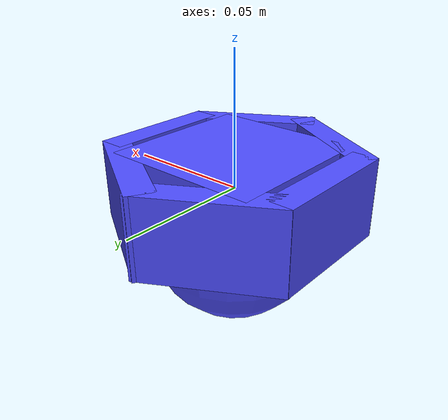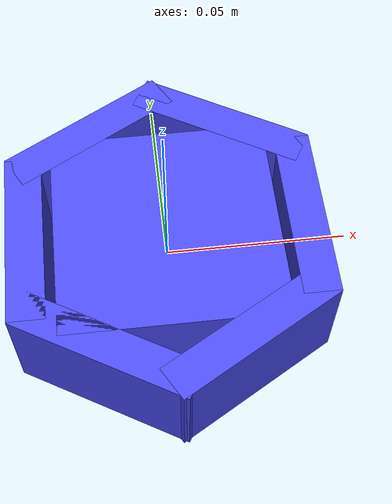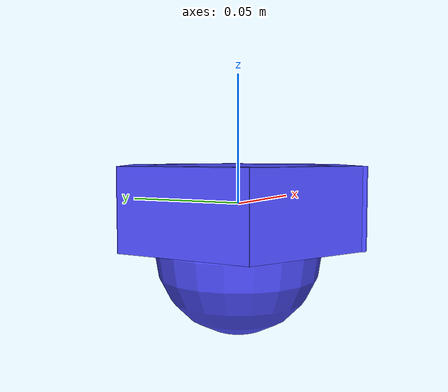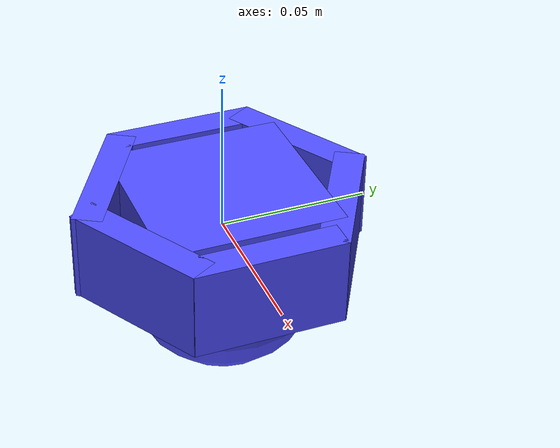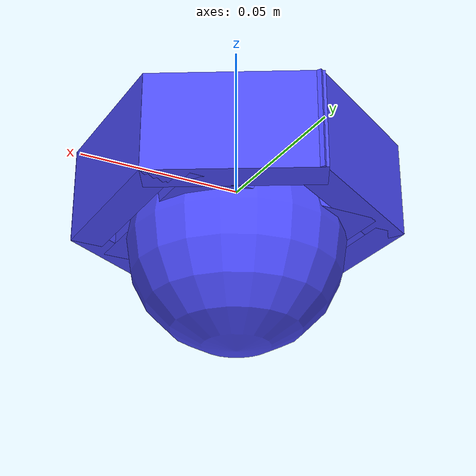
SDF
<?xml version="1.0" ?>
<sdf version="1.5">
  <model name="jar_lid">
    <link name="link">
      <gravity>true</gravity>
      <inertial>
        <pose>0 0 0 0 0 0</pose>
        <mass>0.05</mass>
        <inertia>
          <ixx>0.00029</ixx>
          <ixy>0</ixy>
          <ixz>0</ixz>
          <iyy>0.00029</iyy>
          <iyz>0</iyz>
          <izz>0.00007</izz>
        </inertia>
      </inertial>
      <collision name="side1">
        <pose>0.037581 0 0 0 0 0</pose>
        <geometry>
          <box><size>0.01 0.05 0.03</size></box>
        </geometry>
        <surface>
          <friction><ode><mu>1.0</mu><mu2>1.0</mu2></ode></friction>
          <contact><ode><kp>10000000.0</kp><kd>1.0</kd><min_depth>0.001</min_depth><max_vel>0.1</max_vel></ode></contact>
        </surface>
      </collision>
      <collision name="side2">
        <pose>-0.037581 0 0 0 0 0</pose>
        <geometry>
          <box><size>0.01 0.05 0.03</size></box>
        </geometry>
        <surface>
          <friction><ode><mu>1.0</mu><mu2>1.0</mu2></ode></friction>
          <contact><ode><kp>10000000.0</kp><kd>1.0</kd><min_depth>0.001</min_depth><max_vel>0.1</max_vel></ode></contact>
        </surface>
      </collision>
      <collision name="side3">
        <pose>0.018437 -0.033383 0 0 0 -1.047166667</pose>
        <geometry>
          <box><size>0.01 0.05 0.03</size></box>
        </geometry>
        <surface>
          <friction><ode><mu>1.0</mu><mu2>1.0</mu2></ode></friction>
          <contact><ode><kp>10000000.0</kp><kd>1.0</kd><min_depth>0.001</min_depth><max_vel>0.1</max_vel></ode></contact>
        </surface>
      </collision>
      <collision name="side4">
        <pose>-0.018437 0.033383 0 0 0 -1.047166667</pose>
        <geometry>
          <box><size>0.01 0.05 0.03</size></box>
        </geometry>
        <surface>
          <friction><ode><mu>1.0</mu><mu2>1.0</mu2></ode></friction>
          <contact><ode><kp>10000000.0</kp><kd>1.0</kd><min_depth>0.001</min_depth><max_vel>0.1</max_vel></ode></contact>
        </surface>
      </collision>
      <collision name="side5">
        <pose>-0.018437 -0.033383 0 0 0 1.047166667</pose>
        <geometry>
          <box><size>0.01 0.05 0.03</size></box>
        </geometry>
        <surface>
          <friction><ode><mu>1.0</mu><mu2>1.0</mu2></ode></friction>
          <contact><ode><kp>10000000.0</kp><kd>1.0</kd><min_depth>0.001</min_depth><max_vel>0.1</max_vel></ode></contact>
        </surface>
      </collision>
      <collision name="side6">
        <pose>0.018437 0.033383 0 0 0 1.047166667</pose>
        <geometry>
          <box><size>0.01 0.05 0.03</size></box>
        </geometry>
        <surface>
          <friction><ode><mu>1.0</mu><mu2>1.0</mu2></ode></friction>
          <contact><ode><kp>10000000.0</kp><kd>1.0</kd><min_depth>0.001</min_depth><max_vel>0.1</max_vel></ode></contact>
        </surface>
      </collision>
      <collision name="fill">
        <pose>0 0 0 0 0 0</pose>
        <geometry>
          <box><size>0.06 0.06 0.03</size></box>
        </geometry>
        <surface>
          <friction><ode><mu>1.0</mu><mu2>1.0</mu2></ode></friction>
          <contact><ode><kp>10000000.0</kp><kd>1.0</kd><min_depth>0.001</min_depth><max_vel>0.1</max_vel></ode></contact>
        </surface>
      </collision>
      <collision name="pin">
        <pose>0 0 -0.018 0 0 0</pose>
        <geometry>
          <sphere><radius>0.0325</radius></sphere>
        </geometry>
        <surface>
          <friction><ode><mu>1.0</mu><mu2>1.0</mu2></ode></friction>
          <contact><ode><kp>10000000.0</kp><kd>1.0</kd><min_depth>0.001</min_depth><max_vel>0.1</max_vel></ode></contact>
        </surface>
      </collision>

      <visual name="side1">
        <pose>0.037581 0 0 0 0 0</pose>
        <geometry>
          <box><size>0.01 0.05 0.03</size></box>
        </geometry>
        <material>
          <diffuse>0.3 0.3 1 1</diffuse>
        </material>
      </visual>
      <visual name="side2">
        <pose>-0.037581 0 0 0 0 0</pose>
        <geometry>
          <box><size>0.01 0.05 0.03</size></box>
        </geometry>
        <material>
          <diffuse>0.3 0.3 1 1</diffuse>
        </material>
      </visual>
      <visual name="side3">
        <pose>0.018437 -0.033383 0 0 0 -1.047166667</pose>
        <geometry>
          <box><size>0.01 0.05 0.03</size></box>
        </geometry>
        <material>
          <diffuse>0.3 0.3 1 1</diffuse>
        </material>
      </visual>
      <visual name="side4">
        <pose>-0.018437 0.033383 0 0 0 -1.047166667</pose>
        <geometry>
          <box><size>0.01 0.05 0.03</size></box>
        </geometry>
        <material>
          <diffuse>0.3 0.3 1 1</diffuse>
        </material>
      </visual>
      <visual name="side5">
        <pose>-0.018437 -0.033383 0 0 0 1.047166667</pose>
        <geometry>
          <box><size>0.01 0.05 0.03</size></box>
        </geometry>
        <material>
          <diffuse>0.3 0.3 1 1</diffuse>
        </material>
      </visual>
      <visual name="side6">
        <pose>0.018437 0.033383 0 0 0 1.047166667</pose>
        <geometry>
          <box><size>0.01 0.05 0.03</size></box>
        </geometry>
        <material>
          <diffuse>0.3 0.3 1 1</diffuse>
        </material>
      </visual>
      <visual name="fill">
        <pose>0 0 0 0 0 0</pose>
        <geometry>
          <box><size>0.06 0.06 0.03</size></box>
        </geometry>
        <material>
          <diffuse>0.3 0.3 1 1</diffuse>
        </material>
      </visual>
      <visual name="pin">
        <pose>0 0 -0.018 0 0 0</pose>
        <geometry>
          <sphere><radius>0.0325</radius></sphere>
        </geometry>
        <material>
          <diffuse>0.3 0.3 1 1</diffuse>
        </material>
      </visual>

    </link>
  </model>
</sdf>
